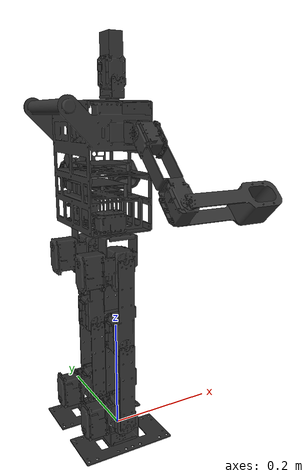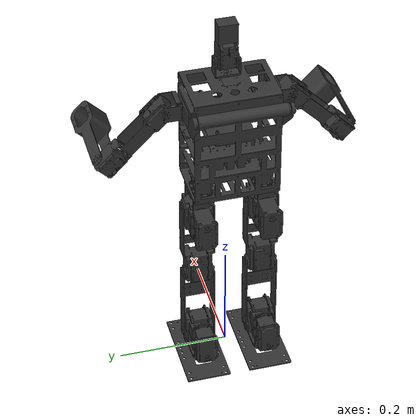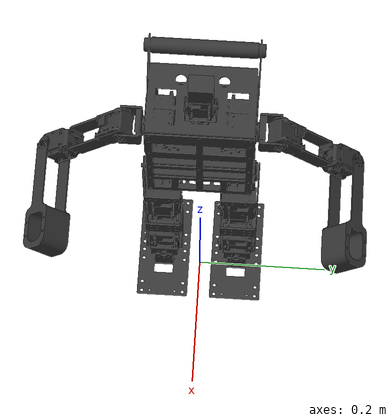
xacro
<?xml version="1.0" ?>
<robot name="Minibot" xmlns:xacro="http://www.ros.org/wiki/xacro">

<xacro:property name="tofa" value="4" /> <!--Torque factor-->
<xacro:property name="infa" value="0" /> <!--inertia factor-->
<xacro:property name="insu" value="0.005" /> <!--inertia summand-->
<xacro:property name="d" value="0" /> <!-- damping -->
<xacro:property name="f" value="0" /> <!-- friction -->

<link name="base_link"/>

  <joint name="base_link_to_body" type="fixed">
    <parent link="base_link"/>
    <child link="L_TORSO"/>
    <origin xyz="0 0 0.545" rpy="0 0 0" />
  </joint>

  <link name="L_TORSO">
    <inertial>
      <origin xyz="-0.025019 0.000832 -0.054364" rpy=" 1.5707963268 0 1.5707963268"/>
      <mass value="1.423"/>
      <inertia ixx="${insu*10+infa* 0.009125471}"  ixy="0.0"  ixz="0" iyy="${insu*10+infa*0.005276569}" iyz="0.0" izz="${insu*10+infa*0.010426914}" />
    </inertial>
    <visual>
      <origin xyz="0 0 0" rpy="1.5707963268 0 1.5707963268"/>
      <geometry>
        <mesh filename="package://minibot_description/meshes/torso_low.dae"  scale="1 1 1"/>
      </geometry>
      <material name="Grey">
        <color rgba="0.20 0.20 0.20 1.0"/>
      </material>
    </visual>
    <collision>
      <origin xyz="0 0 0" rpy="1.5707963268 0 1.5707963268"/>
      <geometry>
        <mesh filename="package://minibot_description/meshes/torso_coll.dae"  scale="1 1 1"/>
      </geometry>
    </collision>
  </link>

  <link name="L_HEAD_PAN">
    <inertial>
      <origin xyz="0.000002 -0.001022 0.008994"/>
      <mass value="0.012"/>
      <inertia ixx="${insu*0.1+infa*0.000001769}"  ixy="0.0"  ixz="0" iyy="${insu*0.1+infa*0.000004625}" iyz="0.0" izz="${insu*0.1+infa*0.000005125}" />
    </inertial>
    <visual>
      <origin xyz="0 0 0" rpy="1.5707963268 0 0" />
      <geometry>
        <mesh filename="package://minibot_description/meshes/head_lower_high.stl"  scale="1 1 1"/>
      </geometry>
      <material name="Grey">
        <color rgba="0.20 0.20 0.20 1.0"/>
      </material>
    </visual>
    <collision>
      <origin xyz="0 0 0" rpy="1.5707963268 0 0" />
      <geometry>
        <mesh filename="package://minibot_description/meshes/head_lower_coll.dae"  scale="1 1 1"/>
      </geometry>
    </collision>
  </link>

  <link name="L_HEAD_TILT">
    <inertial>
      <origin xyz="-0.000223 -0.028433 0.0" rpy="0 1.5707963268 0"/>
      <mass value="0.139"/>
      <inertia ixx="${insu*0.1+infa*0.000097954}"  ixy="0"  ixz="0" iyy="${insu*0.1+infa*0.000025415}" iyz="0" izz="${insu*0.1+infa*0.000107764}" />
    </inertial>
    <visual>
      <origin xyz="0 0 0" rpy="3.14 1.5707963268 0" />
      <geometry>
        <mesh filename="package://minibot_description/meshes/head_upper_high.stl"  scale="1 1 1"/>
      </geometry>
      <material name="Grey">
        <color rgba="0.20 0.20 0.20 1.0"/>
      </material>
    </visual>
    <collision>
      <origin xyz="0 0 0" rpy="3.14 1.5707963268 0" />
      <geometry>
        <mesh filename="package://minibot_description/meshes/head_upper_coll.dae"  scale="1 1 1"/>
      </geometry>
    </collision>
  </link>

  <link name="L_SHOULDER_PITCH_L">
    <inertial>
      <origin xyz="0.0 0.0 0.0087"/>
      <mass value="0.018"/>
      <inertia ixx="${insu*0.1+infa*0.000006948}"  ixy="0"  ixz="0" iyy="${insu*0.1+infa*0.000007574}" iyz="0" izz="${insu*0.1+infa*0.000003585}" />
    </inertial>
    <visual>
      <origin xyz="0 0 0" rpy="0 1.5707963268 1.5707963268"/>
      <geometry>
        <!--box size="0.016 0.033 0.02165" /-->
        <mesh filename="package://minibot_description/meshes/shoulder_con_high.stl"  scale="1 1 1"/>
      </geometry>
      <material name="Grey">
        <color rgba="0.20 0.20 0.20 1.0"/>
      </material>
    </visual>
    <collision>
      <origin xyz="0 0 0" rpy="0 1.5707963268 1.5707963268"/>
      <geometry>
        <mesh filename="package://minibot_description/meshes/shoulder_con_coll.dae"  scale="1 1 1"/>
      </geometry>
    </collision>
  </link>

  <link name="L_SHOULDER_ROLL_L" >
    <inertial>
      <origin xyz="-0.071053 0.000432 0.000046"/>
      <mass value="0.190"/>
      <inertia ixx="${insu+infa*0.0000409}"  ixy="0"  ixz="0" iyy="${insu+infa*0.000667366}" iyz="0" izz="${insu+infa*0.000664711}" />
    </inertial>
    <visual>
      <origin xyz="0 0 0" rpy="0 0 -1.5707963268" />
      <geometry>
        <mesh filename="package://minibot_description/meshes/upper_arm_high.dae"  scale="1 1 1"/>
      </geometry>
      <material name="Grey">
        <color rgba="0.20 0.20 0.20 1.0"/>
      </material>
    </visual>
    <collision>
      <origin xyz="0 0 0" rpy="0 0 -1.5707963268" />
      <geometry>
        <mesh filename="package://minibot_description/meshes/upper_arm_coll.dae"  scale="1 1 1"/>
      </geometry>
    </collision>
  </link>

  <link name="L_ELBOW_L" >
    <inertial>
      <origin xyz="-0.108 0.0 0.0" rpy="0 0 -3.141"/>
      <mass value="0.097"/>
      <inertia ixx="${insu*0.1+infa*0.00004315}"  ixy="0"  ixz="0" iyy="${insu*0.1+infa*0.000170889}" iyz="0" izz="${insu*0.1+infa*0.000179088}" />
    </inertial>

    <visual>
      <origin xyz="0 0 0" rpy="0 1.5707963268 -1.5707963268" />
      <geometry>
        <mesh filename="package://minibot_description/meshes/lower_arm_high.stl"  scale="1 1 1"/>
      </geometry>
      <material name="Grey">
        <color rgba="0.20 0.20 0.20 1.0"/>
      </material>
    </visual>
    <collision>
      <origin xyz="0 0 0" rpy="0 1.5707963268 -1.5707963268" />
      <geometry>
        <mesh filename="package://minibot_description/meshes/lower_arm_coll.dae"  scale="1 1 1"/>
      </geometry>
    </collision>
  </link>

  <link name="L_SHOULDER_PITCH_R" >
    <inertial>
      <origin xyz="0.0 0.0 0.0087"/>
      <mass value="0.018"/>
      <inertia ixx="${insu*0.1+infa*0.000006948}"  ixy="0"  ixz="0" iyy="${insu*0.1+infa*0.000007574}" iyz="0" izz="${insu*0.1+infa*0.000003585}" />
    </inertial>
    <visual>
      <origin xyz="0 0 0" rpy="0 1.5707963268 1.5707963268"/>
      <geometry>
        <!--box size="0.016 0.033 0.02165" /-->
        <mesh filename="package://minibot_description/meshes/shoulder_con_high.stl"  scale="1 1 1"/>
      </geometry>
      <material name="Grey">
        <color rgba="0.20 0.20 0.20 1.0"/>
      </material>
    </visual>
    <collision>
      <origin xyz="0 0 0" rpy="0 1.5707963268 1.5707963268"/>
      <geometry>
        <mesh filename="package://minibot_description/meshes/shoulder_con_coll.dae"  scale="1 1 1"/>
      </geometry>
    </collision>
  </link>

  <link name="L_SHOULDER_ROLL_R" >
    <inertial>
      <origin xyz="-0.071053 0.000432 0.000046"/>
      <mass value="0.190"/>
      <inertia ixx="${insu*0.1+infa*0.0000409}"  ixy="0"  ixz="0" iyy="${insu*0.1+infa*0.000667366}" iyz="0" izz="${insu*0.1+infa*0.000664711}" />
    </inertial>
    <visual>
      <origin xyz="0 0 0" rpy="0 0 -1.5707963268" />
      <geometry>
        <!--box size="0.06 0.032 0.035"/-->
        <mesh filename="package://minibot_description/meshes/upper_arm_high.dae"  scale="1 1 1"/>
      </geometry>
      <material name="Grey">
        <color rgba="0.20 0.20 0.20 1.0"/>
      </material>
    </visual>
    <collision>
      <origin xyz="0 0 0" rpy="0 0 -1.5707963268" />
      <geometry>
        <mesh filename="package://minibot_description/meshes/upper_arm_coll.dae"  scale="1 1 1"/>
      </geometry>
    </collision>
  </link>

  <link name="L_ELBOW_R" >
    <inertial>
      <origin xyz="0.108 0.0 0.0"/>
      <mass value="0.097"/>
      <inertia ixx="${insu*0.1+infa*0.00004315}"  ixy="0"  ixz="0" iyy="${insu*0.1+infa*0.000170889}" iyz="0" izz="${insu*0.1+infa*0.000179088}" />
    </inertial>

    <visual>
      <origin xyz="0 0 0" rpy="0 1.5707963268 1.5707963268" />
      <geometry>
        <mesh filename="package://minibot_description/meshes/lower_arm_high.stl"  scale="1 1 1"/>
      </geometry>
      <material name="Grey">
        <color rgba="0.20 0.20 0.20 1.0"/>
      </material>
    </visual>
    <collision>
      <origin xyz="0 0 0" rpy="0 1.5707963268 1.5707963268" />
      <geometry>
        <mesh filename="package://minibot_description/meshes/lower_arm_coll.dae"  scale="1 1 1"/>
      </geometry>
    </collision>
  </link>

  <link name="L_HIP_YAW_L" >
    <inertial>
      <origin xyz="0.0 0.0 0.011" rpy="1.5707963268 0 1.5707963268"/>
      <mass value="0.022"/>
      <inertia ixx="${insu*0.1+infa*0.000014143}"  ixy="0"  ixz="0" iyy="${insu*0.1+infa*0.000013017}" iyz="0" izz="${insu*0.1+infa*0.0000052}" />
    </inertial>
    <visual>
      <origin xyz="0 0 0" rpy="1.5707963268 0 0" />
      <geometry>
        <!--box size="0.045 0.08175 0.028652" /-->
        <mesh filename="package://minibot_description/meshes/yaw_con_high.stl"  scale="1 1 1"/>
      </geometry>
      <material name="Grey">
        <color rgba="0.20 0.20 0.20 1.0"/>
      </material>
    </visual>
    <collision>
      <origin xyz="0 0 0" rpy="1.5707963268 0 0" />
      <geometry>
        <mesh filename="package://minibot_description/meshes/yaw_con_coll.dae"  scale="1 1 1"/>
      </geometry>
    </collision>
  </link>

  <link name="L_HIP_ROLL_L" >
    <inertial>
      <origin xyz="-0.00057 -0.013721 0.02013 "/>
      <mass value="0.325"/>
      <inertia ixx="${insu+infa*0.000315619}"  ixy="0"  ixz="0" iyy="${insu+infa*0.000280296}" iyz="0" izz="${insu+infa*0.0001431}" />
    </inertial>
    <visual>
      <origin xyz="0 0 0" rpy="0 3.14 0" />
      <geometry>
        <!--box size="0.001 0.001 0.001"/-->
        <mesh filename="package://minibot_description/meshes/hip_roll_low.dae"  scale="1 1 1"/>
      </geometry>
      <material name="Grey">
        <color rgba="0.20 0.20 0.20 1.0"/>
      </material>
    </visual>
    <collision>
      <origin xyz="0 0 0" rpy="0 3.14 0" />
      <geometry>
        <mesh filename="package://minibot_description/meshes/hip_roll_coll.dae"  scale="1 1 1"/>
      </geometry>
    </collision>
  </link>

  <link name="L_HIP_PITCH_L" >
    <inertial>
      <origin xyz="-0.12799 -0.000699 0.000454" rpy="0 1.5707963268 1.5707963268"/>
      <mass value="0.215"/>
      <inertia ixx="${insu+infa*0.000295153}"  ixy="0"  ixz="0" iyy="${insu+infa*0.000085463}" iyz="0" izz="${insu+infa*0.000344449}" />
    </inertial>
    <visual>
      <origin xyz="0 0 0" rpy="1.5707963268 1.5707963268 0" />
      <geometry>
        <!--box size="0.093 0.035 0.045"-->
        <mesh filename="package://minibot_description/meshes/upper_leg_high.stl"  scale="1 1 1"/>
      </geometry>
      <material name="Grey">
        <color rgba="0.20 0.20 0.20 1.0"/>
      </material>
    </visual>
    <collision>
      <origin xyz="0 0 0" rpy="1.5707963268 1.5707963268 0" />
      <geometry>
        <mesh filename="package://minibot_description/meshes/upper_leg_coll.dae"  scale="1 1 1"/>
      </geometry>
    </collision>
  </link>

  <link name="L_KNEE_L" >
    <inertial>
      <origin xyz="-0.072079 -0.00295 0.0" rpy="0 1.5707963268 1.5707963268"/>
      <mass value="0.055"/>
      <inertia ixx="${insu+infa*0.000094062}"  ixy="0"  ixz="0" iyy="${insu+infa*0.000043139}" iyz="0" izz="${insu+infa*0.000125827}" />
    </inertial>
    <visual>
      <origin xyz="0 0 0" rpy="1.5707963268 1.5707963268 0" />
      <geometry>
        <!--box size="0.093 0.035 0.045"/-->
        <mesh filename="package://minibot_description/meshes/lower_leg_high.stl"  scale="1 1 1"/>
      </geometry>
      <material name="Grey">
        <color rgba="0.20 0.20 0.20 1.0"/>
      </material>
    </visual>
    <collision>
      <origin xyz="0 0 0" rpy="1.5707963268 1.5707963268 0" />
      <geometry>
        <mesh filename="package://minibot_description/meshes/lower_leg_coll.dae"  scale="1 1 1"/>
      </geometry>
    </collision>
  </link>

  <link name="L_ANKLE_PITCH_L" >
    <inertial>
      <origin xyz="0.014045 -0.020134 -0.000053" rpy="1.5707963268 1.5707963268 0"/>
      <mass value="0.325"/>
      <inertia ixx="${insu+infa*0.000315619}"  ixy="0"  ixz="0" iyy="${insu+infa*0.000280296}" iyz="0" izz="${insu+infa*0.0001431}" />
    </inertial>
    <visual>
      <origin xyz="0 0 0" rpy="3.14 -1.5707963268 1.5707963268" />
      <geometry>
        <!--box size="0.028652 0.08175 0.045"/-->
        <mesh filename="package://minibot_description/meshes/ankle_roll_low.dae"  scale="1 1 1"/>
      </geometry>
      <material name="Grey">
        <color rgba="0.20 0.20 0.20 1.0"/>
      </material>
    </visual>
    <collision>
      <origin xyz="0 0 0" rpy="3.14 -1.5707963268 1.5707963268" />
      <geometry>
        <mesh filename="package://minibot_description/meshes/ankle_roll_coll.dae"  scale="1 1 1"/>
      </geometry>
    </collision>
  </link>

  <link name="L_ANKLE_ROLL_L" >
    <inertial>
      <origin xyz="-0.0364 0.0003 0.002423" rpy="0 0 1.5707963268"/>
      <mass value="0.086"/>
      <inertia ixx="${insu*0.1+infa*0.000165687}"  ixy="0"  ixz="0" iyy="${insu*0.1+infa*0.000197792}" iyz="0" izz="${insu*0.1+infa*0.00004318}" />
    </inertial>
    <visual>
      <origin xyz="0 0 0" rpy="0 0 -1.5707963268" />
      <geometry>
        <!--box size="0.008 0.066 0.104"/-->
        <mesh filename="package://minibot_description/meshes/foot_high.stl"  scale="1 1 1"/>
      </geometry>
      <material name="Grey">
        <color rgba="0.20 0.20 0.20 1.0"/>
      </material>
    </visual>
    <collision>
      <origin xyz="0 0 0" rpy="0 0 -1.5707963268" />
      <geometry>
        <mesh filename="package://minibot_description/meshes/foot_coll.dae"  scale="1 1 1"/>
      </geometry>
    </collision>
  </link>

  <link name="L_HIP_YAW_R" >
    <inertial>
      <origin xyz="0.0 0.0 0.011" rpy="1.5707963268 0 1.5707963268"/>
      <mass value="0.022"/>
      <inertia ixx="${insu*0.1+infa*0.000014143}"  ixy="0"  ixz="0" iyy="${insu*0.1+infa*0.000013017}" iyz="0" izz="${insu*0.1+infa*0.0000052}" />
    </inertial>
    <visual>
      <origin xyz="0 0 0" rpy="1.5707963268 0 0" />
      <geometry>
        <!--box size="0.045 0.08175 0.028652" /-->
        <mesh filename="package://minibot_description/meshes/yaw_con_high.stl"  scale="1 1 1"/>
      </geometry>
      <material name="Grey">
        <color rgba="0.20 0.20 0.20 1.0"/>
      </material>
    </visual>
    <collision>
      <origin xyz="0 0 0" rpy="1.5707963268 0 0" />
      <geometry>
        <mesh filename="package://minibot_description/meshes/yaw_con_coll.dae"  scale="1 1 1"/>
      </geometry>
    </collision>
  </link>

  <link name="L_HIP_ROLL_R" >
    <inertial>
      <origin xyz="-0.00057 -0.013721 0.02013 "/>
      <mass value="0.325"/>
      <inertia ixx="${insu+infa*0.000315619}"  ixy="0"  ixz="0" iyy="${insu+infa*0.000280296}" iyz="0" izz="${insu+infa*0.0001431}" />
    </inertial>
    <visual>
      <origin xyz="0 0 0" rpy="0 3.14 0" />
      <geometry>
        <!--box size="0.001 0.001 0.001"/-->
        <mesh filename="package://minibot_description/meshes/hip_roll_low.dae"  scale="1 1 1"/>
      </geometry>
      <material name="Grey">
        <color rgba="0.20 0.20 0.20 1.0"/>
      </material>
    </visual>
    <collision>
      <origin xyz="0 0 0" rpy="0 3.14 0" />
      <geometry>
        <mesh filename="package://minibot_description/meshes/hip_roll_coll.dae"  scale="1 1 1"/>
      </geometry>
    </collision>

  </link>

  <link name="L_HIP_PITCH_R" >
    <inertial>
      <origin xyz="0.12799 -0.000699 0.000454" rpy="0 1.5707963268 1.5707963268"/>
      <mass value="0.215"/>
      <inertia ixx="${insu+infa*0.000295153}"  ixy="0"  ixz="0" iyy="${insu+infa*0.000085463}" iyz="0" izz="${insu+infa*0.000344449}" />
    </inertial>
    <visual>
      <origin xyz="0 0 0" rpy="1.5707963268 -1.5707963268 0" />
      <geometry>
        <!--box size="0.093 0.035 0.045"/-->
        <mesh filename="package://minibot_description/meshes/upper_leg_high.stl"  scale="1 1 1"/>
      </geometry>
      <material name="Grey">
        <color rgba="0.20 0.20 0.20 1.0"/>
      </material>
    </visual>
    <collision>
      <origin xyz="0 0 0" rpy="1.5707963268 -1.5707963268 0" />
      <geometry>
        <mesh filename="package://minibot_description/meshes/upper_leg_coll.dae"  scale="1 1 1"/>
      </geometry>
    </collision>

  </link>

  <link name="L_KNEE_R" >
    <inertial>
      <origin xyz="0.072079 -0.00295 0.0" rpy="0 1.5707963268 1.5707963268"/>
      <mass value="0.055"/>
      <inertia ixx="${insu+infa*0.000094062}"  ixy="0"  ixz="0" iyy="${insu+infa*0.000043139}" iyz="0" izz="${insu+infa*0.000125827}" />
    </inertial>
    <visual>
      <origin xyz="0 0 0" rpy="1.5707963268 -1.5707963268 0" />
      <geometry>
        <!--box size="0.093 0.035 0.045"/-->
        <mesh filename="package://minibot_description/meshes/lower_leg_high.stl"  scale="1 1 1"/>
      </geometry>
      <material name="Grey">
        <color rgba="0.20 0.20 0.20 1.0"/>
      </material>
    </visual>
    <collision>
      <origin xyz="0 0 0" rpy="1.5707963268 -1.5707963268 0" />
      <geometry>
        <mesh filename="package://minibot_description/meshes/lower_leg_coll.dae"  scale="1 1 1"/>
      </geometry>
    </collision>

  </link>

  <link name="L_ANKLE_PITCH_R" >
    <inertial>
      <origin xyz="-0.014045 -0.020134 -0.000053" rpy="1.5707963268 1.5707963268 0"/>
      <mass value="0.325"/>
      <inertia ixx="${insu+infa*0.000315619}"  ixy="0"  ixz="0" iyy="${insu+infa*0.000280296}" iyz="0" izz="${insu+infa*0.0001431}" />
    </inertial>
    <visual>
      <origin xyz="0 0 0" rpy="0 1.5707963268 1.5707963268" />
      <geometry>
        <!--box size="0.028652 0.08175 0.045"/-->
        <mesh filename="package://minibot_description/meshes/ankle_roll_low.dae"  scale="1 1 1"/>
      </geometry>
      <material name="Grey">
        <color rgba="0.20 0.20 0.20 1.0"/>
      </material>
    </visual>
    <collision>
      <origin xyz="0 0 0" rpy="0 1.5707963268 1.5707963268" />
      <geometry>
        <mesh filename="package://minibot_description/meshes/ankle_roll_coll.dae"  scale="1 1 1"/>
      </geometry>
    </collision>

  </link>

  <link name="L_ANKLE_ROLL_R" >
    <inertial>
      <origin xyz="0.0364 0.0003 0.002423" rpy="0 0 1.5707963268"/>
      <mass value="0.086"/>
      <inertia ixx="${insu*0.1+infa*0.000165687}"  ixy="0"  ixz="0" iyy="${insu*0.1+infa*0.000197792}" iyz="0" izz="${insu*0.1+infa*0.00004318}" />
    </inertial>
    <visual>
      <origin xyz="0 0 0" rpy="0 0 1.5707963268" />
      <geometry>
        <!--box size="0.008 0.066 0.104"/-->
        <mesh filename="package://minibot_description/meshes/foot_high.stl"  scale="1 1 1"/>
      </geometry>
      <material name="Grey">
        <color rgba="0.20 0.20 0.20 1.0"/>
      </material>
    </visual>
    <collision>
      <origin xyz="0 0 0" rpy="0 0 1.5707963268" />
      <geometry>
        <mesh filename="package://minibot_description/meshes/foot_coll.dae"  scale="1 1 1"/>
      </geometry>
    </collision>

  </link>

  <link name="L_CAMERA" />
  <link name="L_Hand_L" />
  <link name="L_Hand_R" />
  <link name="L_FOOT_BOTTOM_L" />
  <link name="L_FOOT_BOTTOM_R" />
  <link name="L_FOOT_FRONT_L" />
  <link name="L_FOOT_FRONT_R" />

  <link name="L_IMU">
  </link>

  <joint name="j_imu" type="fixed">
  <parent link="L_TORSO"/>
  <child link="L_IMU"/>
  <origin xyz="-0.03 0 -0.05" rpy="0 0 0" />
  <axis xyz="0 0 1" />
  </joint>

  <joint name="j_camboard" type="fixed">
  <parent link="L_HEAD_TILT"/>
  <child link="L_CAMERA"/>
  <origin xyz="0 -0.055 0 " rpy="-1.5707963 0 3.14159" />
  <axis xyz="0 0 1" />
  </joint>

  <joint name="HeadTilt" type="revolute">
    <parent link="L_HEAD_PAN"/>
    <child link="L_HEAD_TILT"/>
    <origin xyz="0 0 0.02715" rpy="-1.5707963 0 1.5707963" />
    <axis xyz="0 0 1" />
    <limit effort="${tofa*2.5}" velocity="5.6548668" lower="-1.5707963267910001" upper="0" />
  <dynamics damping="${d}" friction="0.0"/> </joint>

  <joint name="HeadPan" type="revolute">
    <parent link="L_TORSO"/>
    <child link="L_HEAD_PAN"/>
    <origin xyz="0 0 0.050593" rpy="0 0 1.5707963" />
    <axis xyz="0 0 1" />
    <limit effort="${tofa*2.5}" velocity="5.6548668" lower="-2.1816615649875" upper="2.1816615649875" />
  <dynamics damping="${d}" friction="0.0"/> </joint>

  <joint name="LShoulderPitch" type="revolute">
    <parent link="L_TORSO"/>
    <child link="L_SHOULDER_PITCH_L"/>
    <origin xyz="0 0.08134 0" rpy="0 -1.5707963 -1.5707963" />
    <axis xyz="0 0 1" />
    <limit effort="${tofa*6.0}" velocity="6.597344565" lower="-3.1415926535820002" upper="3.1415926535820002" />
  <dynamics damping="${d}" friction="0.0"/> </joint>

  <joint name="LShoulderRoll" type="revolute">
    <parent link="L_SHOULDER_PITCH_L"/>
    <child link="L_SHOULDER_ROLL_L"/>
    <origin xyz="0 0 0.029194" rpy="-1.5707963 0.7853981633955001 0" />
    <axis xyz="0 0 -1" />
    <limit effort="${tofa*2.5}" velocity="5.648668" lower="-2.3561944901865" upper="0.7853981633955001" />
  <dynamics damping="${d}" friction="0.0"/> </joint>

  <joint name="LElbow" type="revolute">
    <parent link="L_SHOULDER_ROLL_L"/>
    <child link="L_ELBOW_L"/>
    <origin xyz="-0.14 0 0" rpy="1.5707963 1.5707963 0" />
    <axis xyz="0 0 1" />
    <limit effort="${tofa*2.5}" velocity="5.6548668" lower="-1.1344640137935" upper="1.5707963267910001" />
  <dynamics damping="${d}" friction="0.0"/> </joint>

  <joint name="j_LHand" type="fixed">
   <parent link="L_ELBOW_L"/>
   <child link="L_Hand_L" />
   <origin xyz="-0.1573 0 0" rpy="0 0 3.14159"/>
  </joint>

  <joint name="RShoulderPitch" type="revolute">
    <parent link="L_TORSO"/>
    <child link="L_SHOULDER_PITCH_R"/>
    <origin xyz="0 -0.08134 0" rpy="0 1.5707963 -1.5707963" />
    <axis xyz="0 0 1" />
    <limit effort="${tofa*6.0}" velocity="6.597344565" lower="-3.1415926535820002" upper="3.1415926535820002" />
  <dynamics damping="${d}" friction="0.0"/> </joint>

  <joint name="RShoulderRoll" type="revolute">
    <parent link="L_SHOULDER_PITCH_R"/>
    <child link="L_SHOULDER_ROLL_R"/>
    <origin xyz="0 0 0.029194" rpy="-1.5707963 2.356194463 0" />
    <axis xyz="0 0 -1" />
    <limit effort="${tofa*2.5}" velocity="5.648668" lower="-0.7853981633955001" upper="2.3561944901865" />
  <dynamics damping="${d}" friction="0.0"/> </joint>

  <joint name="RElbow" type="revolute">
    <parent link="L_SHOULDER_ROLL_R"/>
    <child link="L_ELBOW_R"/>
    <origin xyz="-0.14 0 0" rpy="-1.5707963 -1.5707963 0" />
    <axis xyz="0 0 1" />
    <limit effort="${tofa*2.5}" velocity="5.6548668" lower="-1.635" upper="1.5707963267910001" />
  <dynamics damping="${d}" friction="0.0"/> </joint>

  <joint name="j_RHand" type="fixed">
   <parent link="L_ELBOW_R"/>
   <child link="L_Hand_R" />
   <origin xyz="0.1573 0 0"/>
  </joint>

  <joint name="LHipYaw" type="revolute">
    <parent link="L_TORSO"/>
    <child link="L_HIP_YAW_L"/>
    <origin xyz="-0.022 0.057775 -0.160593" rpy="0 3.14159 3.14159" />
    <axis xyz="0 0 1" />
    <limit effort="${tofa*2.5}" velocity="5.6548668" lower="-0.9250245035547" upper="0.9250245035547" />
  <dynamics damping="${d}" friction="0.0"/> </joint>

  <joint name="LHipRoll" type="revolute">
    <parent link="L_HIP_YAW_L"/>
    <child link="L_HIP_ROLL_L"/>
    <origin xyz="0 0 0.038444" rpy="-1.5707963 0 1.5707963" />
    <axis xyz="0 0 -1" />
    <limit effort="${tofa*6.0}" velocity="6.597344565" lower="-1.0122909661542001" upper="0.7853981633955001" />
  <dynamics damping="${d}" friction="0.0"/> </joint>

  <joint name="LHipPitch" type="revolute">
    <parent link="L_HIP_ROLL_L"/>
    <child link="L_HIP_PITCH_L"/>
    <origin xyz="0 0 0" rpy="1.5707963 0 1.5707963" />
    <axis xyz="0 0 1" />
    <limit effort="${tofa*8.4}" velocity="4.712388975" lower="-0.48869219055720003" upper="1.919862177189" />
  <dynamics damping="${d}" friction="0.0"/> </joint>

  <joint name="LKnee" type="revolute">
    <parent link="L_HIP_PITCH_L"/>
    <child link="L_KNEE_L"/>
    <origin xyz="-0.150 0 0" rpy="0 0 0" />
    <axis xyz="0 0 1" />
    <limit effort="${tofa*8.4}" velocity="4.712388975" lower="-2.268928027587" upper="0" />
  <dynamics damping="${d}" friction="0.0"/> </joint>

  <joint name="LAnklePitch" type="revolute">
    <parent link="L_KNEE_L"/>
    <child link="L_ANKLE_PITCH_L"/>
    <origin xyz="-0.150 0 0" rpy="3.14159 0 0" />
    <axis xyz="0 0 -1" />
    <limit effort="${tofa*8.4}" velocity="4.712388975" lower="-1.6406094968706" upper="1.2391837689129" />
  <dynamics damping="${d}" friction="0.0"/> </joint>

  <joint name="LAnkleRoll" type="revolute">
    <parent link="L_ANKLE_PITCH_L"/>
    <child link="L_ANKLE_ROLL_L"/>
    <origin xyz="0 0 0" rpy="-1.5707963 0 0" />
    <axis xyz="0 0 1" />
    <limit effort="${tofa*6.0}" velocity="6.597344565" lower="-1.4660765716716" upper="1.4660765716716" />
  <dynamics damping="${d}" friction="0.0"/> </joint>

  <joint name="j_LFootBottom" type="fixed">
   <parent link="L_ANKLE_ROLL_L"/>
   <child link="L_FOOT_BOTTOM_L" />
   <origin xyz="-0.040444 0 0" rpy="3.14159 -1.5707963 0"/>
  </joint>

  <joint name="j_LFootFront" type="fixed">
   <parent link="L_FOOT_BOTTOM_L"/>
   <child link="L_FOOT_FRONT_L" />
   <origin xyz="0.0849 0 0 "/>
  </joint>

  <joint name="RHipYaw" type="revolute">
    <parent link="L_TORSO"/>
    <child link="L_HIP_YAW_R"/>
    <origin xyz="-0.022 -0.057775 -0.160593" rpy="0 3.14159 3.14159" />
    <axis xyz="0 0 1" />
    <limit effort="${tofa*2.5}" velocity="5.6548668" lower="-0.9250245035547" upper="0.9250245035547" />
  <dynamics damping="${d}" friction="0.0"/> </joint>

  <joint name="RHipRoll" type="revolute">
    <parent link="L_HIP_YAW_R"/>
    <child link="L_HIP_ROLL_R"/>
    <origin xyz="0 0 0.038444" rpy="-1.5707963 0 1.5707963" />
    <axis xyz="0 0 1" />
    <limit effort="${tofa*6.0}" velocity="6.597344565" lower="-1.0122909661542001" upper="0.7853981633955001" />
  <dynamics damping="${d}" friction="0.0"/> </joint>

  <joint name="RHipPitch" type="revolute">
    <parent link="L_HIP_ROLL_R"/>
    <child link="L_HIP_PITCH_R"/>
    <origin xyz="0 0 0" rpy="1.5707963 0 -1.5707963" />
    <axis xyz="0 0 1" />
    <limit effort="${tofa*8.4}" velocity="4.712388975" lower="-1.919862177189" upper="0.48869219055720003" />
  <dynamics damping="${d}" friction="0.0"/> </joint>

  <joint name="RKnee" type="revolute">
    <parent link="L_HIP_PITCH_R"/>
    <child link="L_KNEE_R"/>
    <origin xyz="0.150 0 0" rpy="0 0 0" />
    <axis xyz="0 0 1" />
    <limit effort="${tofa*8.4}" velocity="4.712388975" lower="-2.268928027587" upper="0" />
  <dynamics damping="${d}" friction="0.0"/> </joint>

  <joint name="RAnklePitch" type="revolute">
    <parent link="L_KNEE_R"/>
    <child link="L_ANKLE_PITCH_R"/>
    <origin xyz="0.150 0 0" rpy="3.14159 0 0" />
    <axis xyz="0 0 -1" />
    <limit effort="${tofa*8.4}" velocity="4.712388975" lower="-1.2391837689129" upper="1.6406094968706" />
  <dynamics damping="${d}" friction="0.0"/> </joint>

  <joint name="RAnkleRoll" type="revolute">
    <parent link="L_ANKLE_PITCH_R"/>
    <child link="L_ANKLE_ROLL_R"/>
    <origin xyz="0 0 0" rpy="-1.5707963 0 0" />
    <axis xyz="0 0 1" />
    <limit effort="${tofa*6.0}" velocity="6.597344565" lower="-1.4660765716716" upper="1.4660765716716" />
  <dynamics damping="${d}" friction="0.0"/> </joint>

  <joint name="j_RFootBottom" type="fixed">
   <parent link="L_ANKLE_ROLL_R"/>
   <child link="L_FOOT_BOTTOM_R" />
   <origin xyz="0.040444 0 0" rpy="0 -1.5707963 0"/>
  </joint>

  <joint name="j_RFootFront" type="fixed">
   <parent link="L_FOOT_BOTTOM_R"/>
   <child link="L_FOOT_FRONT_R" />
   <origin xyz="0.0849 0 0 "/>
  </joint>

   <transmission name="HeadPanTransmission">
    <type>transmission_interface/SimpleTransmission</type>
    <joint name="HeadPan">
        <hardwareInterface>EffortJointInterface</hardwareInterface>
    </joint>
    <actuator name="HeadPanMotor">
      <hardwareInterface>EffortJointInterface</hardwareInterface>
      <mechanicalReduction>1</mechanicalReduction>
    </actuator>
  </transmission>

   <transmission name="HeadTiltTransmission">
    <type>transmission_interface/SimpleTransmission</type>
    <joint name="HeadTilt">
        <hardwareInterface>EffortJointInterface</hardwareInterface>
    </joint>
    <actuator name="HeadTiltMotor">
      <hardwareInterface>EffortJointInterface</hardwareInterface>
      <mechanicalReduction>1</mechanicalReduction>
    </actuator>
  </transmission>

   <transmission name="LShoulderPitchTransmission">
    <type>transmission_interface/SimpleTransmission</type>
    <joint name="LShoulderPitch">
        <hardwareInterface>EffortJointInterface</hardwareInterface>
    </joint>
    <actuator name="LShoulderPitchMotor">
      <hardwareInterface>EffortJointInterface</hardwareInterface>
      <mechanicalReduction>1</mechanicalReduction>
    </actuator>
  </transmission>

   <transmission name="LShoulderRollTransmission">
    <type>transmission_interface/SimpleTransmission</type>
    <joint name="LShoulderRoll">
        <hardwareInterface>EffortJointInterface</hardwareInterface>
    </joint>
    <actuator name="LShoulderRollTransmission">
      <hardwareInterface>EffortJointInterface</hardwareInterface>
      <mechanicalReduction>1</mechanicalReduction>
    </actuator>
  </transmission>

   <transmission name="LElbowTransmission">
    <type>transmission_interface/SimpleTransmission</type>
    <joint name="LElbow">
        <hardwareInterface>EffortJointInterface</hardwareInterface>
    </joint>
    <actuator name="LElbowMotor">
      <hardwareInterface>EffortJointInterface</hardwareInterface>
      <mechanicalReduction>1</mechanicalReduction>
    </actuator>
  </transmission>

   <transmission name="RShoulderPitchTransmission">
    <type>transmission_interface/SimpleTransmission</type>
    <joint name="RShoulderPitch">
        <hardwareInterface>EffortJointInterface</hardwareInterface>
    </joint>
    <actuator name="RShoulderPitchMotor">
      <hardwareInterface>EffortJointInterface</hardwareInterface>
      <mechanicalReduction>1</mechanicalReduction>
    </actuator>
  </transmission>

   <transmission name="RShoulderRollTransmission">
    <type>transmission_interface/SimpleTransmission</type>
    <joint name="RShoulderRoll">
        <hardwareInterface>EffortJointInterface</hardwareInterface>
    </joint>
    <actuator name="RShoulderRollMotor">
      <hardwareInterface>EffortJointInterface</hardwareInterface>
      <mechanicalReduction>1</mechanicalReduction>
    </actuator>
  </transmission>

   <transmission name="RElbowTransmission">
    <type>transmission_interface/SimpleTransmission</type>
    <joint name="RElbow">
        <hardwareInterface>EffortJointInterface</hardwareInterface>
    </joint>
    <actuator name="RElbowMotor">
      <hardwareInterface>EffortJointInterface</hardwareInterface>
      <mechanicalReduction>1</mechanicalReduction>
    </actuator>
  </transmission>

   <transmission name="LHipYawTransmission">
    <type>transmission_interface/SimpleTransmission</type>
    <joint name="LHipYaw">
        <hardwareInterface>EffortJointInterface</hardwareInterface>
    </joint>
    <actuator name="LHipYawMotor">
      <hardwareInterface>EffortJointInterface</hardwareInterface>
      <mechanicalReduction>1</mechanicalReduction>
    </actuator>
  </transmission>

   <transmission name="LHipRollTransmission">
    <type>transmission_interface/SimpleTransmission</type>
    <joint name="LHipRoll">
        <hardwareInterface>EffortJointInterface</hardwareInterface>
    </joint>
    <actuator name="LHipRollMotor">
      <hardwareInterface>EffortJointInterface</hardwareInterface>
      <mechanicalReduction>1</mechanicalReduction>
    </actuator>
  </transmission>

   <transmission name="LHipPitchTransmission">
    <type>transmission_interface/SimpleTransmission</type>
    <joint name="LHipPitch">
        <hardwareInterface>EffortJointInterface</hardwareInterface>
    </joint>
    <actuator name="LHipPitchMotor">
      <hardwareInterface>EffortJointInterface</hardwareInterface>
      <mechanicalReduction>1</mechanicalReduction>
    </actuator>
  </transmission>

   <transmission name="LKneeTransmission">
    <type>transmission_interface/SimpleTransmission</type>
    <joint name="LKnee">
        <hardwareInterface>EffortJointInterface</hardwareInterface>
    </joint>
    <actuator name="LKneeMotor">
      <hardwareInterface>EffortJointInterface</hardwareInterface>
      <mechanicalReduction>1</mechanicalReduction>
    </actuator>
  </transmission>

   <transmission name="LAnklePitchTransmission">
    <type>transmission_interface/SimpleTransmission</type>
    <joint name="LAnklePitch">
        <hardwareInterface>EffortJointInterface</hardwareInterface>
    </joint>
    <actuator name="LAnklePitchMotor">
      <hardwareInterface>EffortJointInterface</hardwareInterface>
      <mechanicalReduction>1</mechanicalReduction>
    </actuator>
  </transmission>

   <transmission name="LAnkleRollTransmission">
    <type>transmission_interface/SimpleTransmission</type>
    <joint name="LAnkleRoll">
        <hardwareInterface>EffortJointInterface</hardwareInterface>
    </joint>
    <actuator name="LAnkleRollMotor">
      <hardwareInterface>EffortJointInterface</hardwareInterface>
      <mechanicalReduction>1</mechanicalReduction>
    </actuator>
  </transmission>

   <transmission name="RHipYawTransmission">
    <type>transmission_interface/SimpleTransmission</type>
    <joint name="RHipYaw">
        <hardwareInterface>EffortJointInterface</hardwareInterface>
    </joint>
    <actuator name="RHipYawMotor">
      <hardwareInterface>EffortJointInterface</hardwareInterface>
      <mechanicalReduction>1</mechanicalReduction>
    </actuator>
  </transmission>

   <transmission name="RHipRollTransmission">
    <type>transmission_interface/SimpleTransmission</type>
    <joint name="RHipRoll">
        <hardwareInterface>EffortJointInterface</hardwareInterface>
    </joint>
    <actuator name="RHipRollMotor">
      <hardwareInterface>EffortJointInterface</hardwareInterface>
      <mechanicalReduction>1</mechanicalReduction>
    </actuator>
  </transmission>

   <transmission name="RHipPitchTransmission">
    <type>transmission_interface/SimpleTransmission</type>
    <joint name="RHipPitch">
        <hardwareInterface>EffortJointInterface</hardwareInterface>
    </joint>
    <actuator name="RHipPitchMotor">
      <hardwareInterface>EffortJointInterface</hardwareInterface>
      <mechanicalReduction>1</mechanicalReduction>
    </actuator>
  </transmission>

   <transmission name="RKneeTransmission">
    <type>transmission_interface/SimpleTransmission</type>
    <joint name="RKnee">
        <hardwareInterface>EffortJointInterface</hardwareInterface>
    </joint>
    <actuator name="RKneeMotor">
      <hardwareInterface>EffortJointInterface</hardwareInterface>
      <mechanicalReduction>1</mechanicalReduction>
    </actuator>
  </transmission>

   <transmission name="RAnklePitchTransmission">
    <type>transmission_interface/SimpleTransmission</type>
    <joint name="RAnklePitch">
        <hardwareInterface>EffortJointInterface</hardwareInterface>
    </joint>
    <actuator name="RAnklePitchMotor">
      <hardwareInterface>EffortJointInterface</hardwareInterface>
      <mechanicalReduction>1</mechanicalReduction>
    </actuator>
  </transmission>

   <transmission name="RAnkleRollTransmission">
    <type>transmission_interface/SimpleTransmission</type>
    <joint name="RAnkleRoll">
        <hardwareInterface>EffortJointInterface</hardwareInterface>
    </joint>
    <actuator name="RAnkleRollMotor">
      <hardwareInterface>EffortJointInterface</hardwareInterface>
      <mechanicalReduction>1</mechanicalReduction>
    </actuator>
  </transmission>

<gazebo reference="L_TORSO">

    <material>Gazebo/Grey</material>

  </gazebo>

<gazebo reference="L_HEAD_PAN">

    <material>Gazebo/Grey</material>

  </gazebo>

<gazebo reference="L_HEAD_TILT">

    <material>Gazebo/Grey</material>

  </gazebo>

<gazebo reference="L_SHOULDER_L">

    <material>Gazebo/Grey</material>

  </gazebo>

<gazebo reference="L_SHOULDER_PITCH_L">

    <material>Gazebo/Grey</material>

  </gazebo>

<gazebo reference="L_SHOULDER_ROLL_L">

    <material>Gazebo/Grey</material>

  </gazebo>

<gazebo reference="L_ELBOW_L">

    <material>Gazebo/Grey</material>

  </gazebo>

<gazebo reference="L_SHOULDER_R">

    <material>Gazebo/Grey</material>

  </gazebo>

<gazebo reference="L_SHOULDER_PITCH_R">

    <material>Gazebo/Grey</material>

  </gazebo>

<gazebo reference="L_SHOULDER_ROLL_R">

    <material>Gazebo/Grey</material>

  </gazebo>

<gazebo reference="L_ELBOW_R">

    <material>Gazebo/Grey</material>

  </gazebo>

<gazebo reference="L_HIP_YAW_L">

    <material>Gazebo/Grey</material>

  </gazebo>

<gazebo reference="L_HIP_ROLL_L">

    <material>Gazebo/Grey</material>

  </gazebo>

<gazebo reference="L_HIP_PITCH_L">

    <material>Gazebo/Grey</material>

  </gazebo>

<gazebo reference="L_KNEE_L">

    <material>Gazebo/Grey</material>

  </gazebo>

<gazebo reference="L_ANKLE_PITCH_L">

    <material>Gazebo/Grey</material>

  </gazebo>

<gazebo reference="L_ANKLE_ROLL_L">

    <material>Gazebo/Grey</material>

      <kp>1000000.0</kp>
      <kd>100.0</kd>
      <mu1>1.0</mu1>
      <mu2>1.0</mu2>
      <fdir1>1 0 0</fdir1>
      <maxVel>1.0</maxVel>
      <minDepth>0.00</minDepth>
  </gazebo>

<gazebo reference="L_HIP_YAW_R">

    <material>Gazebo/Grey</material>

  </gazebo>

<gazebo reference="L_HIP_ROLL_R">

    <material>Gazebo/Grey</material>

  </gazebo>

<gazebo reference="L_HIP_PITCH_R">

    <material>Gazebo/Grey</material>

  </gazebo>

<gazebo reference="L_KNEE_R">

    <material>Gazebo/Grey</material>

  </gazebo>

<gazebo reference="L_ANKLE_PITCH_R">

    <material>Gazebo/Grey</material>

  </gazebo>

<gazebo reference="L_ANKLE_ROLL_R">

    <material>Gazebo/Grey</material>
      <kp>1000000.0</kp>
      <kd>100.0</kd>
      <mu1>1.0</mu1>
      <mu2>1.0</mu2>
      <fdir1>1 0 0</fdir1>
      <maxVel>1.0</maxVel>
      <minDepth>0.00</minDepth>
  </gazebo>

<gazebo reference="L_CAMERA">

    <material>Gazebo/Grey</material>
        <self_collide>0</self_collide>

  </gazebo>

  <gazebo>
    <plugin filename="libgazebo_ros_control.so" name="gazebo_ros_control">
      <robotNamespace>minibot</robotNamespace>
    </plugin>
  </gazebo>

  <gazebo reference="L_CAMERA">
        <sensor name='camera' type='camera'>
          <pose>-0.050000 -0.010000 0.000000 -1.5708 0.000000 -3.141592</pose>
          <camera name='__default__'>
            <horizontal_fov>1.012300</horizontal_fov>
            <image>
              <width>800</width>
              <height>600</height>
            </image>
            <clip>
              <near>0.001000</near>
              <far>100.000000</far>
            </clip>
          </camera>
          <always_on>1</always_on>
          <update_rate>30.000000</update_rate>
          <visualize>1</visualize>
          <plugin name="camera_controller" filename="libgazebo_ros_camera.so">
            <alwaysOn>true</alwaysOn>
            <updateRate>30</updateRate>
            <cameraName>minibot/camera</cameraName>
            <imageTopicName>image_raw</imageTopicName>
            <cameraInfoTopicName>camera_info</cameraInfoTopicName>
            <frameName>camera_link</frameName>
            <hackBaseline>0.07</hackBaseline>
            <distortionK1>0.0</distortionK1>
            <distortionK2>0.0</distortionK2>
            <distortionK3>0.0</distortionK3>
            <distortionT1>0.0</distortionT1>
            <distortionT2>0.0</distortionT2>
          </plugin>
      </sensor>
  </gazebo>

      <gazebo>
        <plugin filename="libhector_gazebo_ros_imu.so" name="gazebo_ros_imu">
          <robotNamespace>minibot</robotNamespace>
          <bodyName>L_IMU</bodyName>
          <updateRate>50</updateRate>
          <serviceName>imu_service</serviceName>
          <topicName>imu</topicName>
          <gaussianNoise>0</gaussianNoise>
          <xyzOffset>0 0 0</xyzOffset>
          <rpyOffset>0 0 -0.703220730592</rpyOffset>
        </plugin>
      </gazebo>

   <!-- fake controller that allows us to move the robot and to get its oposition -->
   <!-- rostopic pub /minibot/cmd_vel geometry_msgs/Twist "{ linear: [ 0.1, 0, 0], angular: [0.2, 0, 0.1] }" -->
   <gazebo>
    <plugin name="object_controller" filename="libgazebo_ros_planar_move.so">
      <robotNamespace>minibot</robotNamespace>

      <commandTopic>cmd_vel</commandTopic>
      <odometryTopic>odom</odometryTopic>
      <odometryFrame>odom</odometryFrame>
      <odometryRate>100.0</odometryRate>
      <robotBaseFrame>base_link</robotBaseFrame>
    </plugin>
  </gazebo>

</robot>
